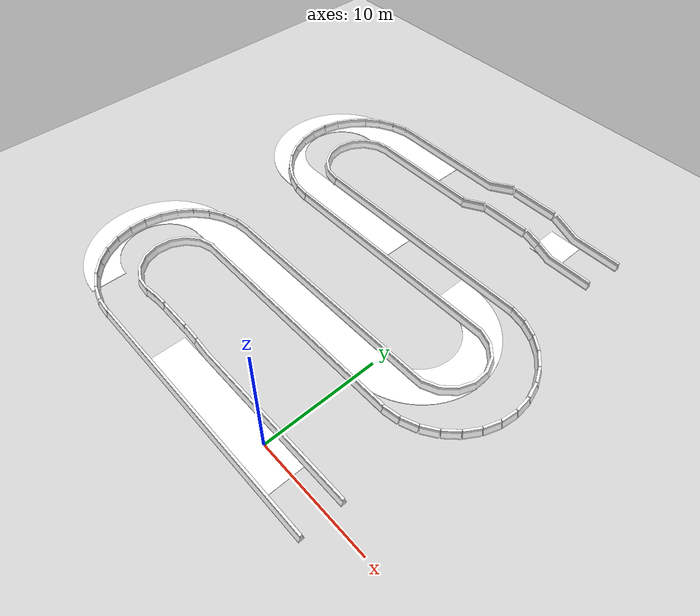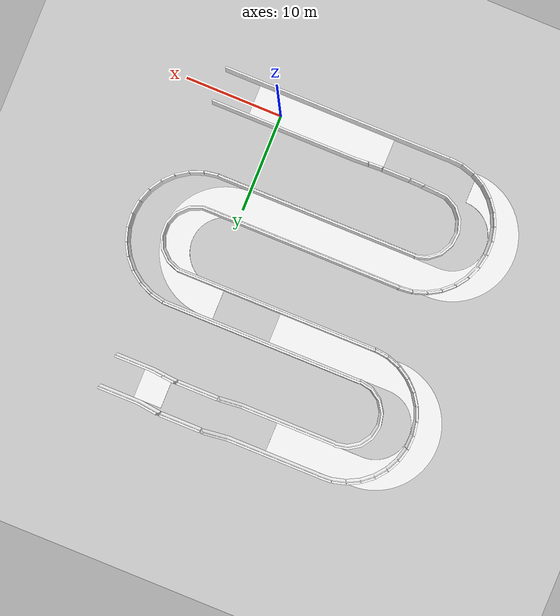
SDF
<?xml version="1.0" ?>
<sdf version="1.6">
  <world name="teknofest_parkur">

    <scene>
      <ambient>0.8 0.8 0.8 1.0</ambient> <background>0.7 0.7 0.7 1.0</background>
      <shadows>true</shadows>
    </scene>

    <include>
      <uri>model://sun</uri>
    </include>

    <include>
      <uri>model://ground_plane</uri>
    </include>

    <model name="ana_yol">
      <static>true</static>
      <pose>0 0 0.01 0 0 0</pose> <include>
        <uri>model://yol</uri>
      </include>
    </model>

    <gui fullscreen='0'>
      <camera name='user_camera'>
        <pose>5 -5 5 0 0.5 2.5</pose>
      </camera>
    </gui>
<model name="bariyer_1">
      <static>true</static>
      <pose>3.0 0 0.01 0 0 0</pose>
      <link name="bariyer_link">
        <visual name="bariyer_visual">
          <geometry>
            <mesh>
              <uri>file:///home/salih/Desktop/ika/src/ika_main/meshes/bariyer.dae</uri>
              <scale>1.0 1.0 1.0</scale>
            </mesh>
          </geometry>
        </visual>
        <collision name="bariyer_collision">
          <geometry>
            <mesh>
              <uri>file:///home/salih/Desktop/ika/src/ika_main/meshes/bariyer.dae</uri>
              <scale>1.0 1.0 1.0</scale>
            </mesh>
          </geometry>
        </collision>
      </link>
    </model>
  </world>
</sdf>

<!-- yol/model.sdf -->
<sdf version="1.6">
  <model name="yol">
    <static>true</static>
    <link name="link">
      <collision name="collision">
        <geometry>
          <mesh>
            <uri>model://yol/meshes/yol.dae</uri>
          </mesh>
        </geometry>
      </collision>
      <visual name="visual">
        <geometry>
          <mesh>
            <uri>model://yol/meshes/yol.dae</uri>
          </mesh>
        </geometry>
      </visual>
    </link>
  </model>
</sdf>
